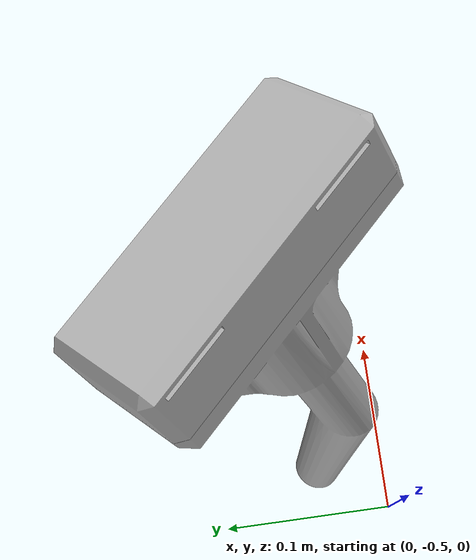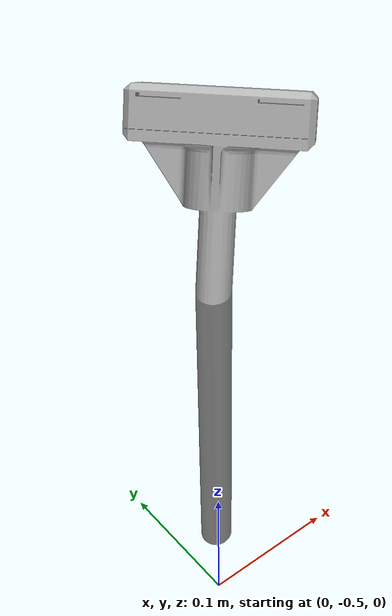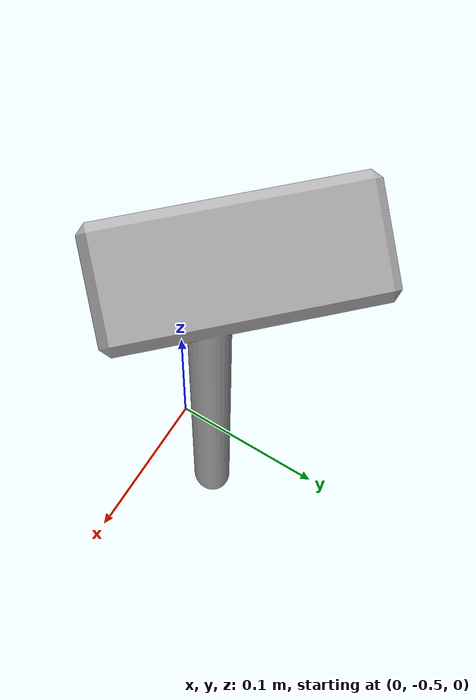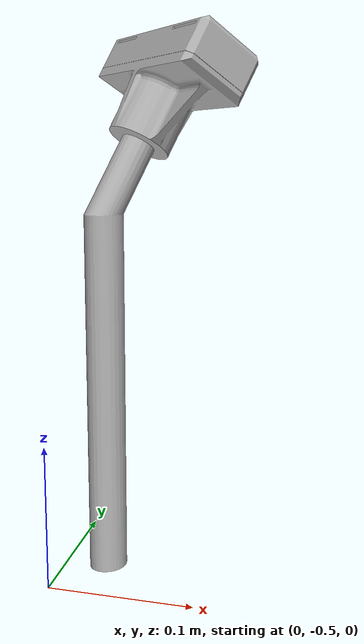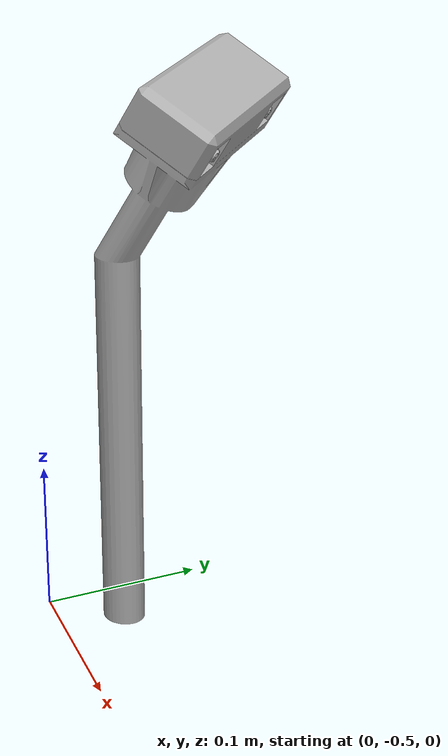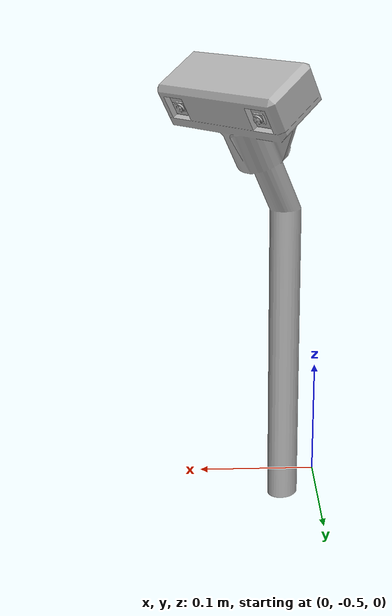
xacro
<?xml version="1.0" ?>
<robot name="Camera_URDF" xmlns:xacro="http://www.ros.org/wiki/xacro">

<xacro:include filename="$(find Camera_URDF_description)/urdf/materials.xacro" />
<xacro:include filename="$(find Camera_URDF_description)/urdf/Camera_URDF.trans" />
<xacro:include filename="$(find Camera_URDF_description)/urdf/Camera_URDF.gazebo" />

<link name="world"/>
  <joint name="world_joint" type="fixed">
    <origin rpy="0 0 0" xyz="0 -0.5 0"/>
    <parent link="world"/>
    <child link="base_link"/>
  </joint>

<link name="base_link">
  <inertial>
    <origin rpy="0 0 0" xyz="0.05012497939960306 0.060625563842543334 0.2550536019907248"/>
    <mass value="2.675090214545101"/>
    <inertia ixx="0.033417" ixy="-0.000275" ixz="-0.004315" iyy="0.033417" iyz="-0.004315" izz="0.003178"/>
  </inertial>
  <visual>
    <origin rpy="0 0 0" xyz="0 0 0"/>
    <geometry>
      <mesh filename="package://Camera_URDF_description/meshes/base_link.stl" scale="0.001 0.001 0.001"/>
    </geometry>
    <material name="silver"/>
  </visual>
  <collision>
    <origin rpy="0 0 0" xyz="0 0 0"/>
    <geometry>
      <mesh filename="package://Camera_URDF_description/meshes/base_link.stl" scale="0.001 0.001 0.001"/>
    </geometry>
  </collision>
</link>

<link name="Camera_R_1">
  <inertial>
    <origin rpy="0 0 0" xyz="0.004604545877300012 0.004697740324517516 0.009609252734166684"/>
    <mass value="0.006742869651498013"/>
    <inertia ixx="0.001" ixy="0.001" ixz="-0.001" iyy="0.001" iyz="-0.001" izz="0.001"/>
  </inertial>
  <visual>
    <origin rpy="0 0 0" xyz="-0.105324 -0.058548 -0.325358"/>
    <geometry>
      <mesh filename="package://Camera_URDF_description/meshes/Camera_R_1.stl" scale="0.001 0.001 0.001"/>
    </geometry>
    <material name="silver"/>
  </visual>
  <collision>
    <origin rpy="0 0 0" xyz="-0.105324 -0.058548 -0.325358"/>
    <geometry>
      <mesh filename="package://Camera_URDF_description/meshes/Camera_R_1.stl" scale="0.001 0.001 0.001"/>
    </geometry>
  </collision>
</link>

<link name="Camera_L_1">
  <inertial>
    <origin rpy="0 0 0" xyz="0.00469774160711893 0.004604544594698723 0.00960925228975218"/>
    <mass value="0.0067428696514977736"/>
    <inertia ixx="0.001" ixy="0.001" ixz="-0.001" iyy="0.001" iyz="-0.001" izz="0.001"/>
  </inertial>
  <visual>
    <origin rpy="0 0 0" xyz="-0.048048 -0.115824 -0.325358"/>
    <geometry>
      <mesh filename="package://Camera_URDF_description/meshes/Camera_L_1.stl" scale="0.001 0.001 0.001"/>
    </geometry>
    <material name="silver"/>
  </visual>
  <collision>
    <origin rpy="0 0 0" xyz="-0.048048 -0.115824 -0.325358"/>
    <geometry>
      <mesh filename="package://Camera_URDF_description/meshes/Camera_L_1.stl" scale="0.001 0.001 0.001"/>
    </geometry>
  </collision>
</link>

<joint name="Camera_Right" type="fixed">
  <origin rpy="0 0 0" xyz="0.105324 0.058548 0.325358"/>
  <parent link="base_link"/>
  <child link="Camera_R_1"/>
</joint>

<joint name="Camera_Left" type="fixed">
  <origin rpy="0 0 0" xyz="0.048048 0.115824 0.325358"/>
  <parent link="base_link"/>
  <child link="Camera_L_1"/>
</joint>

</robot>

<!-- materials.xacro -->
<robot name="Camera_URDF" xmlns:xacro="http://www.ros.org/wiki/xacro" >

<material name="silver">
  <color rgba="0.700 0.700 0.700 1.000"/>
</material>

</robot>

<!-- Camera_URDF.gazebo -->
<robot name="Camera_URDF" xmlns:xacro="http://www.ros.org/wiki/xacro" >

<xacro:property name="body_color" value="Gazebo/Silver" />

<gazebo>
  <plugin name="control" filename="libgazebo_ros_control.so"/>
</gazebo>
<gazebo reference="base_link">
  <material>${body_color}</material>
  <mu1>0.2</mu1>
  <mu2>0.2</mu2>
  <selfCollide>true</selfCollide>
  <gravity>true</gravity>
</gazebo>

<gazebo reference="Camera_R_1">
  <material>${body_color}</material>
  <mu1>0.2</mu1>
  <mu2>0.2</mu2>
  <selfCollide>true</selfCollide>
</gazebo>

<gazebo reference="Camera_L_1">
  <material>${body_color}</material>
  <mu1>0.2</mu1>
  <mu2>0.2</mu2>
  <selfCollide>true</selfCollide>
</gazebo>

<gazebo reference="Camera_Housing_1">
  <material>${body_color}</material>
  <mu1>0.2</mu1>
  <mu2>0.2</mu2>
  <selfCollide>true</selfCollide>
</gazebo>

</robot>
